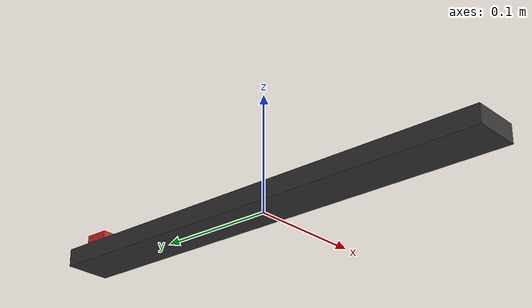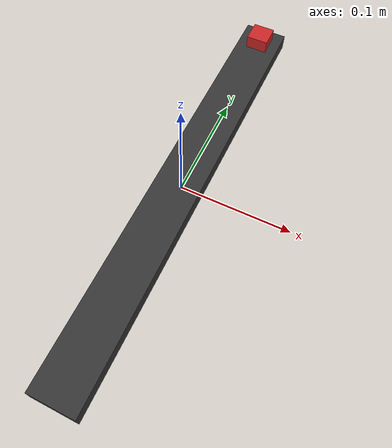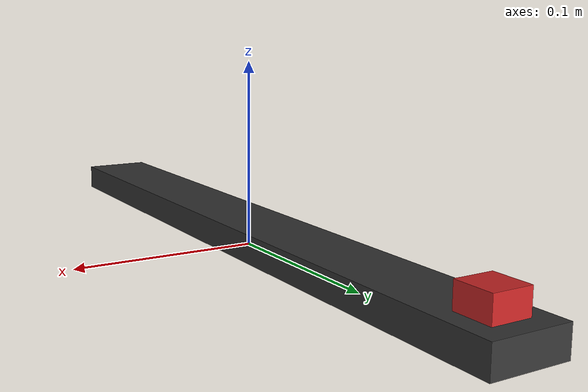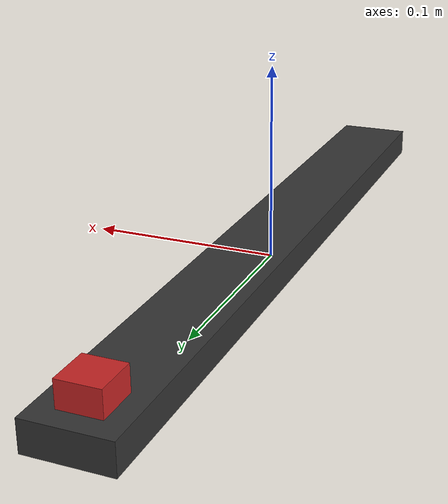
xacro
<?xml version="1.0"?>
<robot name="ribot" xmlns:xacro="http://ros.org/wiki/xacro">

    <!-- ribot is a simple robotic system containing one rgb camera and an imu on top of a tripop.  -->

    <!-- Define  properties -->
    <xacro:property name="M_PI" value="3.1415926535897931" />
    <material name="Orange">
        <color rgba="1.0 0.4 0.0 1.0"/>
    </material>

    <!-- Colors -->
    <material name="tripod_color">
        <color rgba="0.21 0.21 .21 1"/>
    </material>

    <xacro:macro name="default_inertial">
        <inertial>
            <mass value="1"/>
            <inertia ixx="1.0" ixy="0.0" ixz="0.0" iyy="1.0" iyz="0.0" izz="1.0" />
        </inertial>
    </xacro:macro>

    <xacro:include filename="$(find ribot_description)/urdf/imu.urdf.xacro"/>

    <!-- The Robot's base link -->
    <link name="base_link">
        <xacro:default_inertial/>
    </link>

    <!-- Joint connecting the base link to the second link -->
    <joint name="base_link_to_prismatic_x" type="prismatic">
        <origin xyz="0 0 0" rpy="0 0 0"/>
        <axis xyz="1 0 0"/>
        <parent link="base_link"/>
        <child link="prismatic_x"/>
        <limit effort="30" velocity="1.0" lower="-10000" upper="10000"/>
    </joint>

    <link name="prismatic_x">
        <origin xyz="0 0 0" rpy="0 0 0"/>
        <xacro:default_inertial/>
    </link>

    <joint name="prismatic_x_to_prismatic_y" type="prismatic">
        <origin xyz="0 0 0" rpy="0 0 0"/>
        <axis xyz="0 1 0"/>
        <parent link="prismatic_x"/>
        <child link="prismatic_y"/>
        <limit effort="30" velocity="1.0" lower="-10000" upper="10000"/>
    </joint>

    <link name="prismatic_y">
        <origin xyz="0 0 0" rpy="0 0 0"/>
        <xacro:default_inertial/>
    </link>

    <joint name="prismatic_y_to_prismatic_z" type="prismatic">
        <origin xyz="0 0 0" rpy="0 0 0"/>
        <axis xyz="0 0 1"/>
        <parent link="prismatic_y"/>
        <child link="prismatic_z"/>
        <limit effort="30" velocity="1.0" lower="-10000" upper="10000"/>
    </joint>

    <link name="prismatic_z">
        <origin xyz="0 0 0" rpy="0 0 0"/>
        <xacro:default_inertial/>
    </link>

    <joint name="prismatic_z_to_revolute_x" type="continuous">
        <origin xyz="0 0 0" rpy="0 0 0"/>
        <axis xyz="1 0 0"/>
        <parent link="prismatic_z"/>
        <child link="revolute_x"/>
        <limit effort="30" velocity="1.0"/>
    </joint>

    <link name="revolute_x">
        <origin xyz="0 0 0" rpy="0 0 0"/>
        <xacro:default_inertial/>
    </link>

    <joint name="revolute_x_to_revolute_y" type="continuous">
        <origin xyz="0 0 0" rpy="0 0 0"/>
        <axis xyz="0 1 0"/>
        <parent link="revolute_x"/>
        <child link="revolute_y"/>
        <limit effort="30" velocity="1.0"/>
    </joint>

    <link name="revolute_y">
        <origin xyz="0 0 0" rpy="0 0 0"/>
        <xacro:default_inertial/>
    </link>

    <joint name="revolute_y_to_revolute_z" type="continuous">
        <origin xyz="0 0 0" rpy="0 0 0"/>
        <axis xyz="0 0 1"/>
        <parent link="revolute_y"/>
        <child link="revolute_z"/>
        <limit effort="30" velocity="1.0"/>
    </joint>

    <link name="revolute_z">
        <origin xyz="0 0 0" rpy="0 0 0"/>
        <xacro:default_inertial/>
    </link>

    <joint name="revolute_z_to_plate" type="fixed">
        <origin xyz="0 0 0.0075" rpy="0 0 0"/>
        <parent link="revolute_z"/>
        <child link="plate"/>
    </joint>

    <!-- A second link, with the shape of a cylinder -->
    <link name="plate">
        <visual>
            <geometry>
                <box size="0.04 0.4 0.015" />
            </geometry>
            <material name="tripod_color"/>
        </visual>
        <collision>
            <geometry>
                <box size="0.04 0.4 0.015" />
            </geometry>
        </collision>
        <xacro:default_inertial/>
    </link>

    <!-- Gazebo Plugin for ROS Control -->
    <gazebo>
        <plugin name="gazebo_ros_control" filename="libgazebo_ros_control.so">
            <robotNamespace>/</robotNamespace>
        </plugin>
    </gazebo>

    <!-- Transmissions -->
    <transmission name="base_link_to_prismatic_x_trans">
        <type>transmission_interface/SimpleTransmission</type>
        <actuator name="motor1">
            <mechanicalReduction>1</mechanicalReduction>
        </actuator>
        <joint name="base_link_to_prismatic_x">
            <hardwareInterface>hardware_interface/PositionJointInterface</hardwareInterface>
        </joint>
    </transmission>

    <transmission name="prismatic_x_to_prismatic_y_trans">
        <type>transmission_interface/SimpleTransmission</type>
        <actuator name="motor2">
            <mechanicalReduction>1</mechanicalReduction>
        </actuator>
        <joint name="prismatic_x_to_prismatic_y">
            <hardwareInterface>hardware_interface/PositionJointInterface</hardwareInterface>
        </joint>
    </transmission>

    <transmission name="prismatic_y_to_prismatic_z_trans">
        <type>transmission_interface/SimpleTransmission</type>
        <actuator name="motor3">
            <mechanicalReduction>1</mechanicalReduction>
        </actuator>
        <joint name="prismatic_y_to_prismatic_z">
            <hardwareInterface>hardware_interface/PositionJointInterface</hardwareInterface>
        </joint>
    </transmission>

    <transmission name="prismatic_z_to_revolute_x_trans">
        <type>transmission_interface/SimpleTransmission</type>
        <actuator name="motor4">
            <mechanicalReduction>1</mechanicalReduction>
        </actuator>
        <joint name="prismatic_z_to_revolute_x">
            <hardwareInterface>hardware_interface/PositionJointInterface</hardwareInterface>
        </joint>
    </transmission>

    <transmission name="revolute_x_to_revolute_y_trans">
        <type>transmission_interface/SimpleTransmission</type>
        <actuator name="motor5">
            <mechanicalReduction>1</mechanicalReduction>
        </actuator>
        <joint name="revolute_x_to_revolute_y">
            <hardwareInterface>hardware_interface/PositionJointInterface</hardwareInterface>
        </joint>
    </transmission>

    <transmission name="revolute_y_to_revolute_z_trans">
        <type>transmission_interface/SimpleTransmission</type>
        <actuator name="motor6">
            <mechanicalReduction>1</mechanicalReduction>
        </actuator>
        <joint name="revolute_y_to_revolute_z">
            <hardwareInterface>hardware_interface/PositionJointInterface</hardwareInterface>
        </joint>
    </transmission>

    <!-- SENSORS -->
    <!-- Left IMU -->
    <xacro:imu parent="plate" prefix="imu" color_gazebo="Red">
        <origin xyz="0.0 0.18 0.01" rpy="0 0 0" />
        <color_rgb_rviz>
            <material name="red">
                <color rgba="0.9 0 0 1" />
            </material>
        </color_rgb_rviz>
    </xacro:imu>

</robot>

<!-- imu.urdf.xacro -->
<robot name="imu" xmlns:xacro="http://ros.org/wiki/xacro">

	<!-- Start of macro -->
	<xacro:macro name="imu" params="parent prefix *origin **color_rviz color_gazebo">

		<joint name="${prefix}_joint" type="fixed">
			<xacro:insert_block name="origin"/>
			<parent link="${parent}" />
			<child link="${prefix}_link" />
		</joint>

		<link name="${prefix}_link">
			<visual>
				<origin xyz="0 0 0" rpy="0 0 0"/>
				<geometry>
					<box size="0.02 0.02 0.02"/>
				</geometry>
			</visual>

			<collision>
				<origin xyz="0.0 0.0 0.0" rpy="0 0 0"/>
				<geometry>
					<box size="0.02 0.02 0.02"/>
				</geometry>
			</collision>

			<inertial>
				<xacro:insert_block name="origin"/>
				<mass value="0.0"/>
				<inertia ixx="0.0" ixy="0.0" ixz="0.0"
						 iyy="0.0" iyz="0.0"
						 izz="0.0"/>
			</inertial>
		</link>

		<gazebo reference="${prefix}_link">
			<selfCollide>false</selfCollide>
			<material>Gazebo/${color_gazebo}</material>
	    	<sensor name="imu_sensor" type="imu">
				<always_on>true</always_on>
				<update_rate>1000</update_rate>
				<visualize>true</visualize>
				<topic>/imu</topic>
				<plugin filename="libgazebo_ros_imu_sensor.so" name="imu_plugin">
					<topicName>/imu</topicName>
					<bodyName>plate</bodyName>
					<updateRateHZ>100.0</updateRateHZ>
					<gaussianNoise>0.0</gaussianNoise>
					<xyzOffset>0 0 0</xyzOffset>
					<rpyOffset>0 0 0</rpyOffset>
					<frameName>imu_link</frameName>
					<initialOrientationAsReference>true</initialOrientationAsReference>
				</plugin>
			</sensor>
		</gazebo>

</xacro:macro>
</robot>
